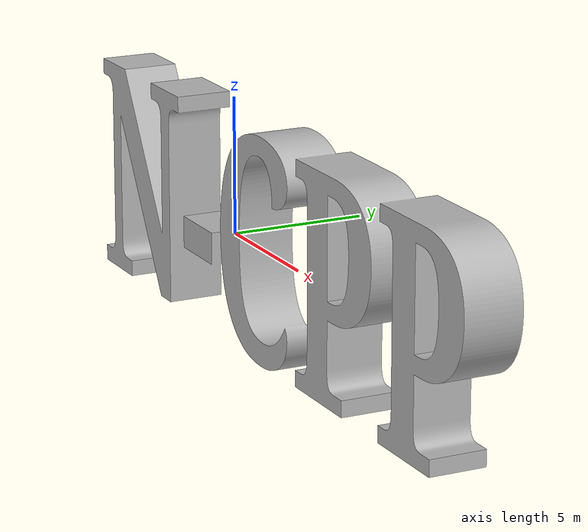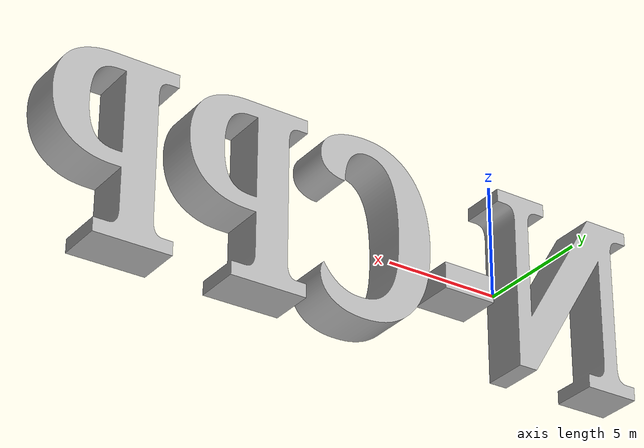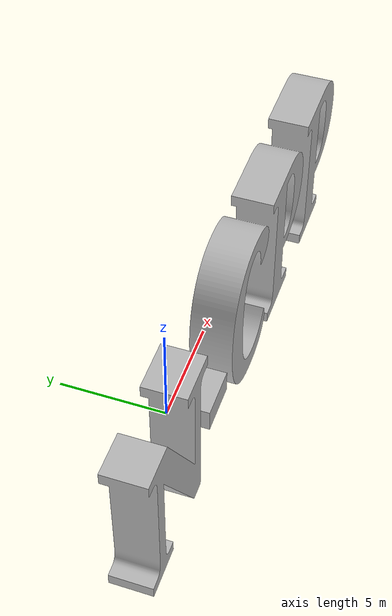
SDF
<sdf version='1.5'>
  <model name='text_N-CPP'>
    <link name='N-CPP'>
      <collision name='N-CPP_inertia_collision'>
        <pose frame=''>0 0 6.05 1.570796 -0 0</pose>
        <geometry>
          <mesh>
            <scale>0.2 0.2 0.2</scale>
            <uri>model://text_description/meshes/N-CPP.stl</uri>
          </mesh>
        </geometry>
        <surface>
          <contact>
            <ode>
              <min_depth>0.001</min_depth>
              <max_vel>0</max_vel>
            </ode>
          </contact>
          <friction>
            <ode/>
          </friction>
        </surface>
      </collision>
      <visual name='N-CPP_inertia_visual'>
        <pose frame=''>0 0 6.05 1.570796 -0 0</pose>
        <geometry>
          <mesh>
            <scale>0.2 0.2 0.2</scale>
            <uri>model://text_description/meshes/N-CPP.stl</uri>
          </mesh>
        </geometry>
      </visual>
      <kinematic>1</kinematic>
      <velocity_decay/>
    </link>
  </model>
</sdf>
